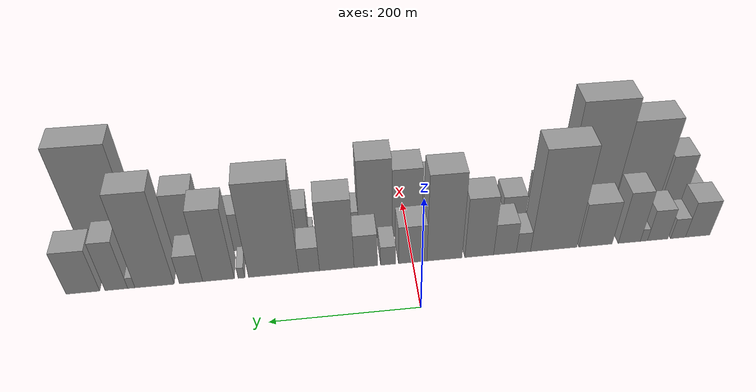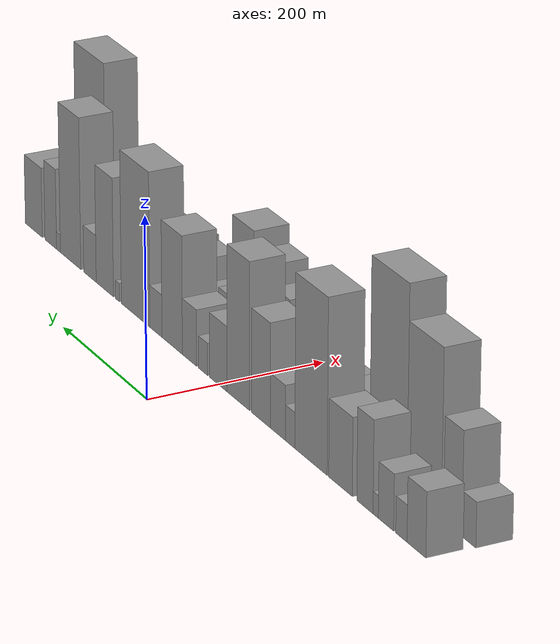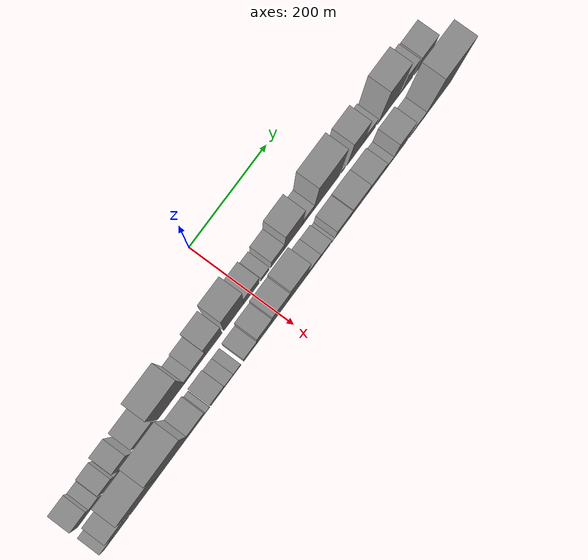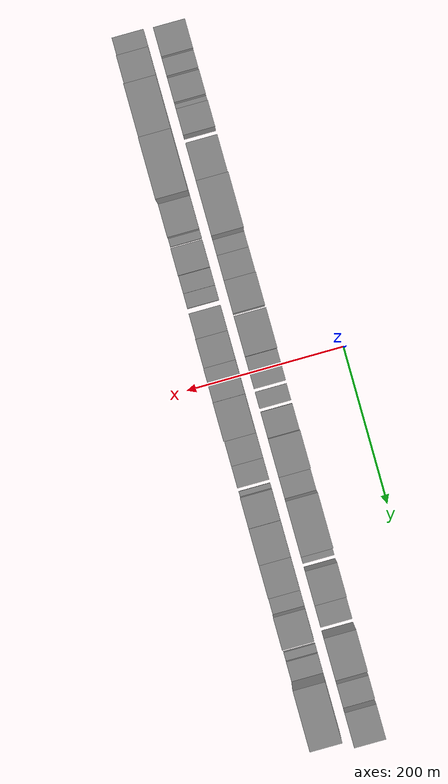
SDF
<sdf version="1.6">
 <world name="default">
  <scene>
   <sky><clouds><speed>12</speed></clouds></sky>
   <ambient>0.4 0.4 0.4 1</ambient>
   <background>0.7 0.7 0.7 1</background>
   <shadows>1</shadows>
  </scene>
  <gravity>0 0 -9.8066</gravity>
  <magnetic_field>6e-06 2.3e-05 -4.2e-05</magnetic_field>
  <physics default="0" name="default_physics" type="ode">
   <ode>
    <solver>
     <type>quick</type>
     <iters>10</iters>
     <sor>1.0</sor>
     <use_dynamic_moi_rescaling>0</use_dynamic_moi_rescaling>
    </solver>
    <constraints>
     <cfm>0</cfm>
     <erp>0.2</erp>
     <contact_max_correcting_vel>100</contact_max_correcting_vel>
     <contact_surface_layer>0.001</contact_surface_layer>
    </constraints>
   </ode>
   <max_step_size>0.004</max_step_size>
   <real_time_factor>1</real_time_factor>
   <real_time_update_rate>250</real_time_update_rate>
  </physics>
  <light name="sun" type="directional">
   <pose>0 0 10 0 0 0</pose>
   <diffuse>0.8 0.8 0.8 1</diffuse>
   <specular>0.2 0.2 0.2 1</specular>
   <attenuation>
    <range>1000</range>
    <constant>0.9</constant>
    <linear>0.01</linear>
    <quadratic>0.001</quadratic>
   </attenuation>
   <direction>-0.5 0.1 -0.9</direction>
  </light>
  <model name="building_1">
   <static>1</static>
   <pose>100.0000 -417.5139 0 0.000000 0.000000 0.000000</pose>
   <link name="link">
    <pose>0 0 34.50 0 0 0</pose>
    <collision name="collision"><geometry><box><size>40.0000 36.9721 69.0000</size></box></geometry></collision>
    <visual name="visual">
     <cast_shadows>0</cast_shadows>
     <geometry><box><size>40.0000 36.9721 69.0000</size></box></geometry>
     <material>
      <script>
       <uri>model://grey_wall/materials/scripts</uri>
       <uri>model://grey_wall/materials/textures</uri>
       <name>vrc/grey_wall</name>
      </script>
     </material>
    </visual>
   </link>
  </model>
  <model name="building_2">
   <static>1</static>
   <pose>100.0000 -387.8609 0 0.000000 0.000000 0.000000</pose>
   <link name="link">
    <pose>0 0 19.50 0 0 0</pose>
    <collision name="collision"><geometry><box><size>40.0000 22.3340 39.0000</size></box></geometry></collision>
    <visual name="visual">
     <cast_shadows>0</cast_shadows>
     <geometry><box><size>40.0000 22.3340 39.0000</size></box></geometry>
     <material>
      <script>
       <uri>model://grey_wall/materials/scripts</uri>
       <uri>model://grey_wall/materials/textures</uri>
       <name>vrc/grey_wall</name>
      </script>
     </material>
    </visual>
   </link>
  </model>
  <model name="building_3">
   <static>1</static>
   <pose>100.0000 -357.2727 0 0.000000 0.000000 0.000000</pose>
   <link name="link">
    <pose>0 0 30.00 0 0 0</pose>
    <collision name="collision"><geometry><box><size>40.0000 30.8422 60.0000</size></box></geometry></collision>
    <visual name="visual">
     <cast_shadows>0</cast_shadows>
     <geometry><box><size>40.0000 30.8422 60.0000</size></box></geometry>
     <material>
      <script>
       <uri>model://grey_wall/materials/scripts</uri>
       <uri>model://grey_wall/materials/textures</uri>
       <name>vrc/grey_wall</name>
      </script>
     </material>
    </visual>
   </link>
  </model>
  <model name="building_4">
   <static>1</static>
   <pose>100.0000 -336.5750 0 0.000000 0.000000 0.000000</pose>
   <link name="link">
    <pose>0 0 12.00 0 0 0</pose>
    <collision name="collision"><geometry><box><size>40.0000 10.5533 24.0000</size></box></geometry></collision>
    <visual name="visual">
     <cast_shadows>0</cast_shadows>
     <geometry><box><size>40.0000 10.5533 24.0000</size></box></geometry>
     <material>
      <script>
       <uri>model://grey_wall/materials/scripts</uri>
       <uri>model://grey_wall/materials/textures</uri>
       <name>vrc/grey_wall</name>
      </script>
     </material>
    </visual>
   </link>
  </model>
  <model name="building_5">
   <static>1</static>
   <pose>100.0000 -314.8209 0 0.000000 0.000000 0.000000</pose>
   <link name="link">
    <pose>0 0 49.50 0 0 0</pose>
    <collision name="collision"><geometry><box><size>40.0000 32.9549 99.0000</size></box></geometry></collision>
    <visual name="visual">
     <cast_shadows>0</cast_shadows>
     <geometry><box><size>40.0000 32.9549 99.0000</size></box></geometry>
     <material>
      <script>
       <uri>model://grey_wall/materials/scripts</uri>
       <uri>model://grey_wall/materials/textures</uri>
       <name>vrc/grey_wall</name>
      </script>
     </material>
    </visual>
   </link>
  </model>
  <model name="building_6">
   <static>1</static>
   <pose>100.0000 -264.7780 0 0.000000 0.000000 0.000000</pose>
   <link name="link">
    <pose>0 0 42.00 0 0 0</pose>
    <collision name="collision"><geometry><box><size>40.0000 49.1308 84.0000</size></box></geometry></collision>
    <visual name="visual">
     <cast_shadows>0</cast_shadows>
     <geometry><box><size>40.0000 49.1308 84.0000</size></box></geometry>
     <material>
      <script>
       <uri>model://grey_wall/materials/scripts</uri>
       <uri>model://grey_wall/materials/textures</uri>
       <name>vrc/grey_wall</name>
      </script>
     </material>
    </visual>
   </link>
  </model>
  <model name="building_7">
   <static>1</static>
   <pose>100.0000 -203.1031 0 0.000000 0.000000 0.000000</pose>
   <link name="link">
    <pose>0 0 94.50 0 0 0</pose>
    <collision name="collision"><geometry><box><size>40.0000 68.2191 189.0000</size></box></geometry></collision>
    <visual name="visual">
     <cast_shadows>0</cast_shadows>
     <geometry><box><size>40.0000 68.2191 189.0000</size></box></geometry>
     <material>
      <script>
       <uri>model://grey_wall/materials/scripts</uri>
       <uri>model://grey_wall/materials/textures</uri>
       <name>vrc/grey_wall</name>
      </script>
     </material>
    </visual>
   </link>
  </model>
  <model name="building_8">
   <static>1</static>
   <pose>100.0000 -158.7596 0 0.000000 0.000000 0.000000</pose>
   <link name="link">
    <pose>0 0 19.50 0 0 0</pose>
    <collision name="collision"><geometry><box><size>40.0000 20.4680 39.0000</size></box></geometry></collision>
    <visual name="visual">
     <cast_shadows>0</cast_shadows>
     <geometry><box><size>40.0000 20.4680 39.0000</size></box></geometry>
     <material>
      <script>
       <uri>model://grey_wall/materials/scripts</uri>
       <uri>model://grey_wall/materials/textures</uri>
       <name>vrc/grey_wall</name>
      </script>
     </material>
    </visual>
   </link>
  </model>
  <model name="building_9">
   <static>1</static>
   <pose>100.0000 -132.1076 0 0.000000 0.000000 0.000000</pose>
   <link name="link">
    <pose>0 0 30.00 0 0 0</pose>
    <collision name="collision"><geometry><box><size>40.0000 32.8361 60.0000</size></box></geometry></collision>
    <visual name="visual">
     <cast_shadows>0</cast_shadows>
     <geometry><box><size>40.0000 32.8361 60.0000</size></box></geometry>
     <material>
      <script>
       <uri>model://grey_wall/materials/scripts</uri>
       <uri>model://grey_wall/materials/textures</uri>
       <name>vrc/grey_wall</name>
      </script>
     </material>
    </visual>
   </link>
  </model>
  <model name="building_10">
   <static>1</static>
   <pose>100.0000 -95.0094 0 0.000000 0.000000 0.000000</pose>
   <link name="link">
    <pose>0 0 57.00 0 0 0</pose>
    <collision name="collision"><geometry><box><size>40.0000 41.3603 114.0000</size></box></geometry></collision>
    <visual name="visual">
     <cast_shadows>0</cast_shadows>
     <geometry><box><size>40.0000 41.3603 114.0000</size></box></geometry>
     <material>
      <script>
       <uri>model://grey_wall/materials/scripts</uri>
       <uri>model://grey_wall/materials/textures</uri>
       <name>vrc/grey_wall</name>
      </script>
     </material>
    </visual>
   </link>
  </model>
  <model name="building_11">
   <static>1</static>
   <pose>100.0000 -45.2737 0 0.000000 0.000000 0.000000</pose>
   <link name="link">
    <pose>0 0 81.00 0 0 0</pose>
    <collision name="collision"><geometry><box><size>40.0000 50.1111 162.0000</size></box></geometry></collision>
    <visual name="visual">
     <cast_shadows>0</cast_shadows>
     <geometry><box><size>40.0000 50.1111 162.0000</size></box></geometry>
     <material>
      <script>
       <uri>model://grey_wall/materials/scripts</uri>
       <uri>model://grey_wall/materials/textures</uri>
       <name>vrc/grey_wall</name>
      </script>
     </material>
    </visual>
   </link>
  </model>
  <model name="building_12">
   <static>1</static>
   <pose>100.0000 -0.1246 0 0.000000 0.000000 0.000000</pose>
   <link name="link">
    <pose>0 0 36.00 0 0 0</pose>
    <collision name="collision"><geometry><box><size>40.0000 40.1870 72.0000</size></box></geometry></collision>
    <visual name="visual">
     <cast_shadows>0</cast_shadows>
     <geometry><box><size>40.0000 40.1870 72.0000</size></box></geometry>
     <material>
      <script>
       <uri>model://grey_wall/materials/scripts</uri>
       <uri>model://grey_wall/materials/textures</uri>
       <name>vrc/grey_wall</name>
      </script>
     </material>
    </visual>
   </link>
  </model>
  <model name="building_13">
   <static>1</static>
   <pose>100.0000 34.5965 0 0.000000 0.000000 0.000000</pose>
   <link name="link">
    <pose>0 0 18.00 0 0 0</pose>
    <collision name="collision"><geometry><box><size>40.0000 21.2553 36.0000</size></box></geometry></collision>
    <visual name="visual">
     <cast_shadows>0</cast_shadows>
     <geometry><box><size>40.0000 21.2553 36.0000</size></box></geometry>
     <material>
      <script>
       <uri>model://grey_wall/materials/scripts</uri>
       <uri>model://grey_wall/materials/textures</uri>
       <name>vrc/grey_wall</name>
      </script>
     </material>
    </visual>
   </link>
  </model>
  <model name="building_14">
   <static>1</static>
   <pose>100.0000 65.7811 0 0.000000 0.000000 0.000000</pose>
   <link name="link">
    <pose>0 0 31.50 0 0 0</pose>
    <collision name="collision"><geometry><box><size>40.0000 33.1139 63.0000</size></box></geometry></collision>
    <visual name="visual">
     <cast_shadows>0</cast_shadows>
     <geometry><box><size>40.0000 33.1139 63.0000</size></box></geometry>
     <material>
      <script>
       <uri>model://grey_wall/materials/scripts</uri>
       <uri>model://grey_wall/materials/textures</uri>
       <name>vrc/grey_wall</name>
      </script>
     </material>
    </visual>
   </link>
  </model>
  <model name="building_15">
   <static>1</static>
   <pose>100.0000 106.3190 0 0.000000 0.000000 0.000000</pose>
   <link name="link">
    <pose>0 0 66.00 0 0 0</pose>
    <collision name="collision"><geometry><box><size>40.0000 47.9619 132.0000</size></box></geometry></collision>
    <visual name="visual">
     <cast_shadows>0</cast_shadows>
     <geometry><box><size>40.0000 47.9619 132.0000</size></box></geometry>
     <material>
      <script>
       <uri>model://grey_wall/materials/scripts</uri>
       <uri>model://grey_wall/materials/textures</uri>
       <name>vrc/grey_wall</name>
      </script>
     </material>
    </visual>
   </link>
  </model>
  <model name="building_16">
   <static>1</static>
   <pose>100.0000 144.6355 0 0.000000 0.000000 0.000000</pose>
   <link name="link">
    <pose>0 0 24.00 0 0 0</pose>
    <collision name="collision"><geometry><box><size>40.0000 28.6711 48.0000</size></box></geometry></collision>
    <visual name="visual">
     <cast_shadows>0</cast_shadows>
     <geometry><box><size>40.0000 28.6711 48.0000</size></box></geometry>
     <material>
      <script>
       <uri>model://grey_wall/materials/scripts</uri>
       <uri>model://grey_wall/materials/textures</uri>
       <name>vrc/grey_wall</name>
      </script>
     </material>
    </visual>
   </link>
  </model>
  <model name="building_17">
   <static>1</static>
   <pose>100.0000 193.4795 0 0.000000 0.000000 0.000000</pose>
   <link name="link">
    <pose>0 0 87.00 0 0 0</pose>
    <collision name="collision"><geometry><box><size>40.0000 69.0169 174.0000</size></box></geometry></collision>
    <visual name="visual">
     <cast_shadows>0</cast_shadows>
     <geometry><box><size>40.0000 69.0169 174.0000</size></box></geometry>
     <material>
      <script>
       <uri>model://grey_wall/materials/scripts</uri>
       <uri>model://grey_wall/materials/textures</uri>
       <name>vrc/grey_wall</name>
      </script>
     </material>
    </visual>
   </link>
  </model>
  <model name="building_18">
   <static>1</static>
   <pose>100.0000 237.6015 0 0.000000 0.000000 0.000000</pose>
   <link name="link">
    <pose>0 0 10.50 0 0 0</pose>
    <collision name="collision"><geometry><box><size>40.0000 9.2270 21.0000</size></box></geometry></collision>
    <visual name="visual">
     <cast_shadows>0</cast_shadows>
     <geometry><box><size>40.0000 9.2270 21.0000</size></box></geometry>
     <material>
      <script>
       <uri>model://grey_wall/materials/scripts</uri>
       <uri>model://grey_wall/materials/textures</uri>
       <name>vrc/grey_wall</name>
      </script>
     </material>
    </visual>
   </link>
  </model>
  <model name="building_19">
   <static>1</static>
   <pose>100.0000 268.6588 0 0.000000 0.000000 0.000000</pose>
   <link name="link">
    <pose>0 0 67.50 0 0 0</pose>
    <collision name="collision"><geometry><box><size>40.0000 42.8875 135.0000</size></box></geometry></collision>
    <visual name="visual">
     <cast_shadows>0</cast_shadows>
     <geometry><box><size>40.0000 42.8875 135.0000</size></box></geometry>
     <material>
      <script>
       <uri>model://grey_wall/materials/scripts</uri>
       <uri>model://grey_wall/materials/textures</uri>
       <name>vrc/grey_wall</name>
      </script>
     </material>
    </visual>
   </link>
  </model>
  <model name="building_20">
   <static>1</static>
   <pose>100.0000 305.8284 0 0.000000 0.000000 0.000000</pose>
   <link name="link">
    <pose>0 0 27.00 0 0 0</pose>
    <collision name="collision"><geometry><box><size>40.0000 31.4517 54.0000</size></box></geometry></collision>
    <visual name="visual">
     <cast_shadows>0</cast_shadows>
     <geometry><box><size>40.0000 31.4517 54.0000</size></box></geometry>
     <material>
      <script>
       <uri>model://grey_wall/materials/scripts</uri>
       <uri>model://grey_wall/materials/textures</uri>
       <name>vrc/grey_wall</name>
      </script>
     </material>
    </visual>
   </link>
  </model>
  <model name="building_21">
   <static>1</static>
   <pose>100.0000 354.7186 0 0.000000 0.000000 0.000000</pose>
   <link name="link">
    <pose>0 0 87.00 0 0 0</pose>
    <collision name="collision"><geometry><box><size>40.0000 52.3286 174.0000</size></box></geometry></collision>
    <visual name="visual">
     <cast_shadows>0</cast_shadows>
     <geometry><box><size>40.0000 52.3286 174.0000</size></box></geometry>
     <material>
      <script>
       <uri>model://grey_wall/materials/scripts</uri>
       <uri>model://grey_wall/materials/textures</uri>
       <name>vrc/grey_wall</name>
      </script>
     </material>
    </visual>
   </link>
  </model>
  <model name="building_22">
   <static>1</static>
   <pose>100.0000 385.7405 0 0.000000 0.000000 0.000000</pose>
   <link name="link">
    <pose>0 0 10.50 0 0 0</pose>
    <collision name="collision"><geometry><box><size>40.0000 9.7152 21.0000</size></box></geometry></collision>
    <visual name="visual">
     <cast_shadows>0</cast_shadows>
     <geometry><box><size>40.0000 9.7152 21.0000</size></box></geometry>
     <material>
      <script>
       <uri>model://grey_wall/materials/scripts</uri>
       <uri>model://grey_wall/materials/textures</uri>
       <name>vrc/grey_wall</name>
      </script>
     </material>
    </visual>
   </link>
  </model>
  <model name="building_23">
   <static>1</static>
   <pose>100.0000 405.5661 0 0.000000 0.000000 0.000000</pose>
   <link name="link">
    <pose>0 0 46.50 0 0 0</pose>
    <collision name="collision"><geometry><box><size>40.0000 29.9361 93.0000</size></box></geometry></collision>
    <visual name="visual">
     <cast_shadows>0</cast_shadows>
     <geometry><box><size>40.0000 29.9361 93.0000</size></box></geometry>
     <material>
      <script>
       <uri>model://grey_wall/materials/scripts</uri>
       <uri>model://grey_wall/materials/textures</uri>
       <name>vrc/grey_wall</name>
      </script>
     </material>
    </visual>
   </link>
  </model>
  <model name="building_24">
   <static>1</static>
   <pose>100.0000 449.7076 0 0.000000 0.000000 0.000000</pose>
   <link name="link">
    <pose>0 0 40.50 0 0 0</pose>
    <collision name="collision"><geometry><box><size>40.0000 44.3469 81.0000</size></box></geometry></collision>
    <visual name="visual">
     <cast_shadows>0</cast_shadows>
     <geometry><box><size>40.0000 44.3469 81.0000</size></box></geometry>
     <material>
      <script>
       <uri>model://grey_wall/materials/scripts</uri>
       <uri>model://grey_wall/materials/textures</uri>
       <name>vrc/grey_wall</name>
      </script>
     </material>
    </visual>
   </link>
  </model>
  <model name="building_25">
   <static>1</static>
   <pose>152.0000 -425.5807 0 0.000000 0.000000 0.000000</pose>
   <link name="link">
    <pose>0 0 24.00 0 0 0</pose>
    <collision name="collision"><geometry><box><size>40.0000 26.8387 48.0000</size></box></geometry></collision>
    <visual name="visual">
     <cast_shadows>0</cast_shadows>
     <geometry><box><size>40.0000 26.8387 48.0000</size></box></geometry>
     <material>
      <script>
       <uri>model://grey_wall/materials/scripts</uri>
       <uri>model://grey_wall/materials/textures</uri>
       <name>vrc/grey_wall</name>
      </script>
     </material>
    </visual>
   </link>
  </model>
  <model name="building_26">
   <static>1</static>
   <pose>152.0000 -394.0557 0 0.000000 0.000000 0.000000</pose>
   <link name="link">
    <pose>0 0 55.50 0 0 0</pose>
    <collision name="collision"><geometry><box><size>40.0000 36.2112 111.0000</size></box></geometry></collision>
    <visual name="visual">
     <cast_shadows>0</cast_shadows>
     <geometry><box><size>40.0000 36.2112 111.0000</size></box></geometry>
     <material>
      <script>
       <uri>model://grey_wall/materials/scripts</uri>
       <uri>model://grey_wall/materials/textures</uri>
       <name>vrc/grey_wall</name>
      </script>
     </material>
    </visual>
   </link>
  </model>
  <model name="building_27">
   <static>1</static>
   <pose>152.0000 -337.7805 0 0.000000 0.000000 0.000000</pose>
   <link name="link">
    <pose>0 0 90.00 0 0 0</pose>
    <collision name="collision"><geometry><box><size>40.0000 68.3393 180.0000</size></box></geometry></collision>
    <visual name="visual">
     <cast_shadows>0</cast_shadows>
     <geometry><box><size>40.0000 68.3393 180.0000</size></box></geometry>
     <material>
      <script>
       <uri>model://grey_wall/materials/scripts</uri>
       <uri>model://grey_wall/materials/textures</uri>
       <name>vrc/grey_wall</name>
      </script>
     </material>
    </visual>
   </link>
  </model>
  <model name="building_28">
   <static>1</static>
   <pose>152.0000 -265.5434 0 0.000000 0.000000 0.000000</pose>
   <link name="link">
    <pose>0 0 109.50 0 0 0</pose>
    <collision name="collision"><geometry><box><size>40.0000 76.1349 219.0000</size></box></geometry></collision>
    <visual name="visual">
     <cast_shadows>0</cast_shadows>
     <geometry><box><size>40.0000 76.1349 219.0000</size></box></geometry>
     <material>
      <script>
       <uri>model://grey_wall/materials/scripts</uri>
       <uri>model://grey_wall/materials/textures</uri>
       <name>vrc/grey_wall</name>
      </script>
     </material>
    </visual>
   </link>
  </model>
  <model name="building_29">
   <static>1</static>
   <pose>152.0000 -206.5290 0 0.000000 0.000000 0.000000</pose>
   <link name="link">
    <pose>0 0 36.00 0 0 0</pose>
    <collision name="collision"><geometry><box><size>40.0000 41.8941 72.0000</size></box></geometry></collision>
    <visual name="visual">
     <cast_shadows>0</cast_shadows>
     <geometry><box><size>40.0000 41.8941 72.0000</size></box></geometry>
     <material>
      <script>
       <uri>model://grey_wall/materials/scripts</uri>
       <uri>model://grey_wall/materials/textures</uri>
       <name>vrc/grey_wall</name>
      </script>
     </material>
    </visual>
   </link>
  </model>
  <model name="building_30">
   <static>1</static>
   <pose>152.0000 -180.3246 0 0.000000 0.000000 0.000000</pose>
   <link name="link">
    <pose>0 0 12.00 0 0 0</pose>
    <collision name="collision"><geometry><box><size>40.0000 10.5147 24.0000</size></box></geometry></collision>
    <visual name="visual">
     <cast_shadows>0</cast_shadows>
     <geometry><box><size>40.0000 10.5147 24.0000</size></box></geometry>
     <material>
      <script>
       <uri>model://grey_wall/materials/scripts</uri>
       <uri>model://grey_wall/materials/textures</uri>
       <name>vrc/grey_wall</name>
      </script>
     </material>
    </visual>
   </link>
  </model>
  <model name="building_31">
   <static>1</static>
   <pose>152.0000 -154.8702 0 0.000000 0.000000 0.000000</pose>
   <link name="link">
    <pose>0 0 30.00 0 0 0</pose>
    <collision name="collision"><geometry><box><size>40.0000 34.3940 60.0000</size></box></geometry></collision>
    <visual name="visual">
     <cast_shadows>0</cast_shadows>
     <geometry><box><size>40.0000 34.3940 60.0000</size></box></geometry>
     <material>
      <script>
       <uri>model://grey_wall/materials/scripts</uri>
       <uri>model://grey_wall/materials/textures</uri>
       <name>vrc/grey_wall</name>
      </script>
     </material>
    </visual>
   </link>
  </model>
  <model name="building_32">
   <static>1</static>
   <pose>152.0000 -126.4748 0 0.000000 0.000000 0.000000</pose>
   <link name="link">
    <pose>0 0 19.50 0 0 0</pose>
    <collision name="collision"><geometry><box><size>40.0000 22.3968 39.0000</size></box></geometry></collision>
    <visual name="visual">
     <cast_shadows>0</cast_shadows>
     <geometry><box><size>40.0000 22.3968 39.0000</size></box></geometry>
     <material>
      <script>
       <uri>model://grey_wall/materials/scripts</uri>
       <uri>model://grey_wall/materials/textures</uri>
       <name>vrc/grey_wall</name>
      </script>
     </material>
    </visual>
   </link>
  </model>
  <model name="building_33">
   <static>1</static>
   <pose>152.0000 -105.9206 0 0.000000 0.000000 0.000000</pose>
   <link name="link">
    <pose>0 0 18.00 0 0 0</pose>
    <collision name="collision"><geometry><box><size>40.0000 18.7115 36.0000</size></box></geometry></collision>
    <visual name="visual">
     <cast_shadows>0</cast_shadows>
     <geometry><box><size>40.0000 18.7115 36.0000</size></box></geometry>
     <material>
      <script>
       <uri>model://grey_wall/materials/scripts</uri>
       <uri>model://grey_wall/materials/textures</uri>
       <name>vrc/grey_wall</name>
      </script>
     </material>
    </visual>
   </link>
  </model>
  <model name="building_34">
   <static>1</static>
   <pose>152.0000 -73.1988 0 0.000000 0.000000 0.000000</pose>
   <link name="link">
    <pose>0 0 30.00 0 0 0</pose>
    <collision name="collision"><geometry><box><size>40.0000 32.7321 60.0000</size></box></geometry></collision>
    <visual name="visual">
     <cast_shadows>0</cast_shadows>
     <geometry><box><size>40.0000 32.7321 60.0000</size></box></geometry>
     <material>
      <script>
       <uri>model://grey_wall/materials/scripts</uri>
       <uri>model://grey_wall/materials/textures</uri>
       <name>vrc/grey_wall</name>
      </script>
     </material>
    </visual>
   </link>
  </model>
  <model name="building_35">
   <static>1</static>
   <pose>152.0000 -38.5304 0 0.000000 0.000000 0.000000</pose>
   <link name="link">
    <pose>0 0 52.50 0 0 0</pose>
    <collision name="collision"><geometry><box><size>40.0000 36.6047 105.0000</size></box></geometry></collision>
    <visual name="visual">
     <cast_shadows>0</cast_shadows>
     <geometry><box><size>40.0000 36.6047 105.0000</size></box></geometry>
     <material>
      <script>
       <uri>model://grey_wall/materials/scripts</uri>
       <uri>model://grey_wall/materials/textures</uri>
       <name>vrc/grey_wall</name>
      </script>
     </material>
    </visual>
   </link>
  </model>
  <model name="building_36">
   <static>1</static>
   <pose>152.0000 1.1253 0 0.000000 0.000000 0.000000</pose>
   <link name="link">
    <pose>0 0 64.50 0 0 0</pose>
    <collision name="collision"><geometry><box><size>40.0000 42.7068 129.0000</size></box></geometry></collision>
    <visual name="visual">
     <cast_shadows>0</cast_shadows>
     <geometry><box><size>40.0000 42.7068 129.0000</size></box></geometry>
     <material>
      <script>
       <uri>model://grey_wall/materials/scripts</uri>
       <uri>model://grey_wall/materials/textures</uri>
       <name>vrc/grey_wall</name>
      </script>
     </material>
    </visual>
   </link>
  </model>
  <model name="building_37">
   <static>1</static>
   <pose>152.0000 46.7085 0 0.000000 0.000000 0.000000</pose>
   <link name="link">
    <pose>0 0 75.00 0 0 0</pose>
    <collision name="collision"><geometry><box><size>40.0000 48.4595 150.0000</size></box></geometry></collision>
    <visual name="visual">
     <cast_shadows>0</cast_shadows>
     <geometry><box><size>40.0000 48.4595 150.0000</size></box></geometry>
     <material>
      <script>
       <uri>model://grey_wall/materials/scripts</uri>
       <uri>model://grey_wall/materials/textures</uri>
       <name>vrc/grey_wall</name>
      </script>
     </material>
    </visual>
   </link>
  </model>
  <model name="building_38">
   <static>1</static>
   <pose>152.0000 87.1796 0 0.000000 0.000000 0.000000</pose>
   <link name="link">
    <pose>0 0 28.50 0 0 0</pose>
    <collision name="collision"><geometry><box><size>40.0000 32.4826 57.0000</size></box></geometry></collision>
    <visual name="visual">
     <cast_shadows>0</cast_shadows>
     <geometry><box><size>40.0000 32.4826 57.0000</size></box></geometry>
     <material>
      <script>
       <uri>model://grey_wall/materials/scripts</uri>
       <uri>model://grey_wall/materials/textures</uri>
       <name>vrc/grey_wall</name>
      </script>
     </material>
    </visual>
   </link>
  </model>
  <model name="building_39">
   <static>1</static>
   <pose>152.0000 117.2472 0 0.000000 0.000000 0.000000</pose>
   <link name="link">
    <pose>0 0 25.50 0 0 0</pose>
    <collision name="collision"><geometry><box><size>40.0000 27.6525 51.0000</size></box></geometry></collision>
    <visual name="visual">
     <cast_shadows>0</cast_shadows>
     <geometry><box><size>40.0000 27.6525 51.0000</size></box></geometry>
     <material>
      <script>
       <uri>model://grey_wall/materials/scripts</uri>
       <uri>model://grey_wall/materials/textures</uri>
       <name>vrc/grey_wall</name>
      </script>
     </material>
    </visual>
   </link>
  </model>
  <model name="building_40">
   <static>1</static>
   <pose>152.0000 139.3779 0 0.000000 0.000000 0.000000</pose>
   <link name="link">
    <pose>0 0 7.50 0 0 0</pose>
    <collision name="collision"><geometry><box><size>40.0000 6.6089 15.0000</size></box></geometry></collision>
    <visual name="visual">
     <cast_shadows>0</cast_shadows>
     <geometry><box><size>40.0000 6.6089 15.0000</size></box></geometry>
     <material>
      <script>
       <uri>model://grey_wall/materials/scripts</uri>
       <uri>model://grey_wall/materials/textures</uri>
       <name>vrc/grey_wall</name>
      </script>
     </material>
    </visual>
   </link>
  </model>
  <model name="building_41">
   <static>1</static>
   <pose>152.0000 162.2737 0 0.000000 0.000000 0.000000</pose>
   <link name="link">
    <pose>0 0 36.00 0 0 0</pose>
    <collision name="collision"><geometry><box><size>40.0000 39.1828 72.0000</size></box></geometry></collision>
    <visual name="visual">
     <cast_shadows>0</cast_shadows>
     <geometry><box><size>40.0000 39.1828 72.0000</size></box></geometry>
     <material>
      <script>
       <uri>model://grey_wall/materials/scripts</uri>
       <uri>model://grey_wall/materials/textures</uri>
       <name>vrc/grey_wall</name>
      </script>
     </material>
    </visual>
   </link>
  </model>
  <model name="building_42">
   <static>1</static>
   <pose>152.0000 204.9582 0 0.000000 0.000000 0.000000</pose>
   <link name="link">
    <pose>0 0 39.00 0 0 0</pose>
    <collision name="collision"><geometry><box><size>40.0000 46.1862 78.0000</size></box></geometry></collision>
    <visual name="visual">
     <cast_shadows>0</cast_shadows>
     <geometry><box><size>40.0000 46.1862 78.0000</size></box></geometry>
     <material>
      <script>
       <uri>model://grey_wall/materials/scripts</uri>
       <uri>model://grey_wall/materials/textures</uri>
       <name>vrc/grey_wall</name>
      </script>
     </material>
    </visual>
   </link>
  </model>
  <model name="building_43">
   <static>1</static>
   <pose>152.0000 249.0861 0 0.000000 0.000000 0.000000</pose>
   <link name="link">
    <pose>0 0 36.00 0 0 0</pose>
    <collision name="collision"><geometry><box><size>40.0000 42.0696 72.0000</size></box></geometry></collision>
    <visual name="visual">
     <cast_shadows>0</cast_shadows>
     <geometry><box><size>40.0000 42.0696 72.0000</size></box></geometry>
     <material>
      <script>
       <uri>model://grey_wall/materials/scripts</uri>
       <uri>model://grey_wall/materials/textures</uri>
       <name>vrc/grey_wall</name>
      </script>
     </material>
    </visual>
   </link>
  </model>
  <model name="building_44">
   <static>1</static>
   <pose>152.0000 280.6875 0 0.000000 0.000000 0.000000</pose>
   <link name="link">
    <pose>0 0 21.00 0 0 0</pose>
    <collision name="collision"><geometry><box><size>40.0000 21.1331 42.0000</size></box></geometry></collision>
    <visual name="visual">
     <cast_shadows>0</cast_shadows>
     <geometry><box><size>40.0000 21.1331 42.0000</size></box></geometry>
     <material>
      <script>
       <uri>model://grey_wall/materials/scripts</uri>
       <uri>model://grey_wall/materials/textures</uri>
       <name>vrc/grey_wall</name>
      </script>
     </material>
    </visual>
   </link>
  </model>
  <model name="building_45">
   <static>1</static>
   <pose>152.0000 311.8316 0 0.000000 0.000000 0.000000</pose>
   <link name="link">
    <pose>0 0 58.50 0 0 0</pose>
    <collision name="collision"><geometry><box><size>40.0000 41.1552 117.0000</size></box></geometry></collision>
    <visual name="visual">
     <cast_shadows>0</cast_shadows>
     <geometry><box><size>40.0000 41.1552 117.0000</size></box></geometry>
     <material>
      <script>
       <uri>model://grey_wall/materials/scripts</uri>
       <uri>model://grey_wall/materials/textures</uri>
       <name>vrc/grey_wall</name>
      </script>
     </material>
    </visual>
   </link>
  </model>
  <model name="building_46">
   <static>1</static>
   <pose>152.0000 345.8170 0 0.000000 0.000000 0.000000</pose>
   <link name="link">
    <pose>0 0 12.00 0 0 0</pose>
    <collision name="collision"><geometry><box><size>40.0000 10.8155 24.0000</size></box></geometry></collision>
    <visual name="visual">
     <cast_shadows>0</cast_shadows>
     <geometry><box><size>40.0000 10.8155 24.0000</size></box></geometry>
     <material>
      <script>
       <uri>model://grey_wall/materials/scripts</uri>
       <uri>model://grey_wall/materials/textures</uri>
       <name>vrc/grey_wall</name>
      </script>
     </material>
    </visual>
   </link>
  </model>
  <model name="building_47">
   <static>1</static>
   <pose>152.0000 363.7173 0 0.000000 0.000000 0.000000</pose>
   <link name="link">
    <pose>0 0 22.50 0 0 0</pose>
    <collision name="collision"><geometry><box><size>40.0000 24.9851 45.0000</size></box></geometry></collision>
    <visual name="visual">
     <cast_shadows>0</cast_shadows>
     <geometry><box><size>40.0000 24.9851 45.0000</size></box></geometry>
     <material>
      <script>
       <uri>model://grey_wall/materials/scripts</uri>
       <uri>model://grey_wall/materials/textures</uri>
       <name>vrc/grey_wall</name>
      </script>
     </material>
    </visual>
   </link>
  </model>
  <model name="building_48">
   <static>1</static>
   <pose>152.0000 413.9263 0 0.000000 0.000000 0.000000</pose>
   <link name="link">
    <pose>0 0 105.00 0 0 0</pose>
    <collision name="collision"><geometry><box><size>40.0000 75.4330 210.0000</size></box></geometry></collision>
    <visual name="visual">
     <cast_shadows>0</cast_shadows>
     <geometry><box><size>40.0000 75.4330 210.0000</size></box></geometry>
     <material>
      <script>
       <uri>model://grey_wall/materials/scripts</uri>
       <uri>model://grey_wall/materials/textures</uri>
       <name>vrc/grey_wall</name>
      </script>
     </material>
    </visual>
   </link>
  </model>
 </world>
</sdf>
